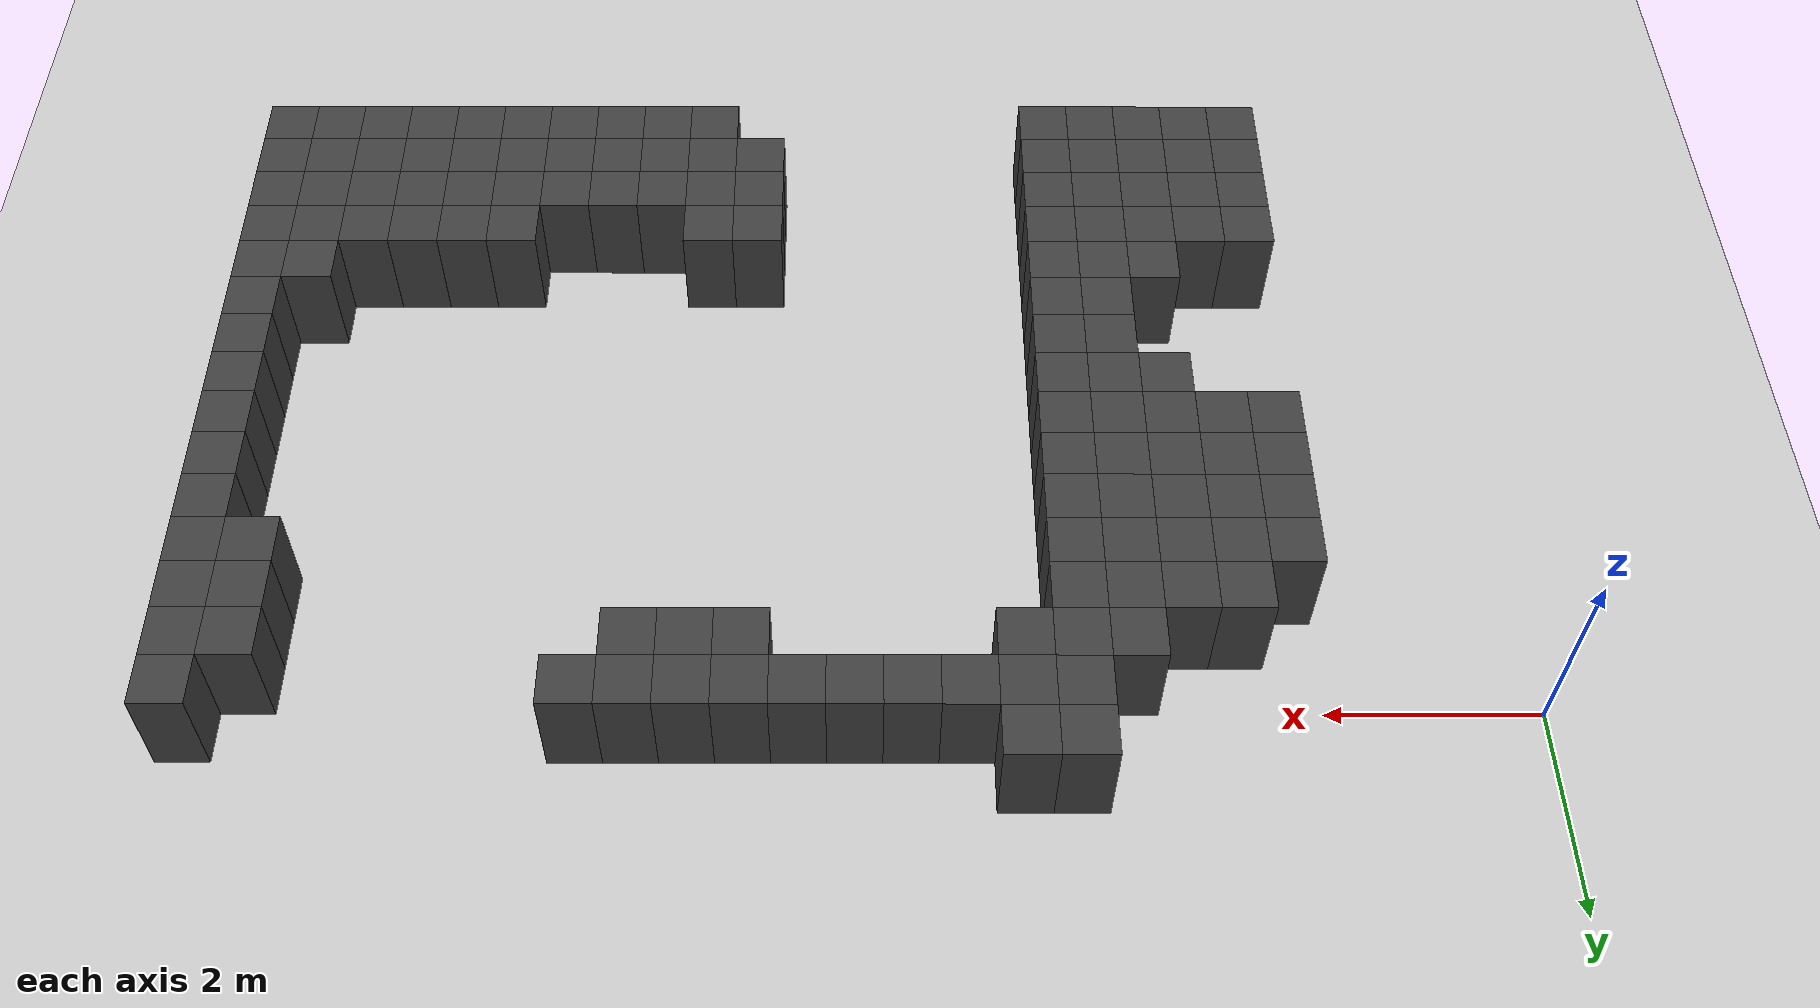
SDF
<sdf version="1.7">
 <world name="map_8843">
  <model name="ground_plane">
   <static>true</static>
   <link name="link">
    <collision name="collision">
     <geometry><plane><normal>0 0 1</normal><size>200 200</size></plane></geometry>
    </collision>
    <visual name="visual">
     <geometry><plane><normal>0 0 1</normal><size>200 200</size></plane></geometry>
     <material><ambient>0.8 0.8 0.8 1</ambient><diffuse>0.8 0.8 0.8 1</diffuse></material>
    </visual>
   </link>
  </model>
  <model name="maze_environment">
   <static>true</static>
   <link name="wall_461">
    <pose>4.250 0.750 0.500 0 0 0</pose>
    <collision name="col"><geometry><box><size>0.5 0.5 1.0</size></box></geometry></collision>
    <visual name="vis">
     <geometry><box><size>0.5 0.5 1.0</size></box></geometry>
     <material><ambient>0.15 0.15 0.15 1</ambient><diffuse>0.25 0.25 0.25 1</diffuse></material>
    </visual>
   </link>
   <link name="wall_462">
    <pose>4.750 0.750 0.500 0 0 0</pose>
    <collision name="col"><geometry><box><size>0.5 0.5 1.0</size></box></geometry></collision>
    <visual name="vis">
     <geometry><box><size>0.5 0.5 1.0</size></box></geometry>
     <material><ambient>0.15 0.15 0.15 1</ambient><diffuse>0.25 0.25 0.25 1</diffuse></material>
    </visual>
   </link>
   <link name="wall_484">
    <pose>4.250 0.250 0.500 0 0 0</pose>
    <collision name="col"><geometry><box><size>0.5 0.5 1.0</size></box></geometry></collision>
    <visual name="vis">
     <geometry><box><size>0.5 0.5 1.0</size></box></geometry>
     <material><ambient>0.15 0.15 0.15 1</ambient><diffuse>0.25 0.25 0.25 1</diffuse></material>
    </visual>
   </link>
   <link name="wall_485">
    <pose>4.750 0.250 0.500 0 0 0</pose>
    <collision name="col"><geometry><box><size>0.5 0.5 1.0</size></box></geometry></collision>
    <visual name="vis">
     <geometry><box><size>0.5 0.5 1.0</size></box></geometry>
     <material><ambient>0.15 0.15 0.15 1</ambient><diffuse>0.25 0.25 0.25 1</diffuse></material>
    </visual>
   </link>
   <link name="wall_486">
    <pose>5.250 0.250 0.500 0 0 0</pose>
    <collision name="col"><geometry><box><size>0.5 0.5 1.0</size></box></geometry></collision>
    <visual name="vis">
     <geometry><box><size>0.5 0.5 1.0</size></box></geometry>
     <material><ambient>0.15 0.15 0.15 1</ambient><diffuse>0.25 0.25 0.25 1</diffuse></material>
    </visual>
   </link>
   <link name="wall_487">
    <pose>5.750 0.250 0.500 0 0 0</pose>
    <collision name="col"><geometry><box><size>0.5 0.5 1.0</size></box></geometry></collision>
    <visual name="vis">
     <geometry><box><size>0.5 0.5 1.0</size></box></geometry>
     <material><ambient>0.15 0.15 0.15 1</ambient><diffuse>0.25 0.25 0.25 1</diffuse></material>
    </visual>
   </link>
   <link name="wall_488">
    <pose>6.250 0.250 0.500 0 0 0</pose>
    <collision name="col"><geometry><box><size>0.5 0.5 1.0</size></box></geometry></collision>
    <visual name="vis">
     <geometry><box><size>0.5 0.5 1.0</size></box></geometry>
     <material><ambient>0.15 0.15 0.15 1</ambient><diffuse>0.25 0.25 0.25 1</diffuse></material>
    </visual>
   </link>
   <link name="wall_489">
    <pose>6.750 0.250 0.500 0 0 0</pose>
    <collision name="col"><geometry><box><size>0.5 0.5 1.0</size></box></geometry></collision>
    <visual name="vis">
     <geometry><box><size>0.5 0.5 1.0</size></box></geometry>
     <material><ambient>0.15 0.15 0.15 1</ambient><diffuse>0.25 0.25 0.25 1</diffuse></material>
    </visual>
   </link>
   <link name="wall_490">
    <pose>7.250 0.250 0.500 0 0 0</pose>
    <collision name="col"><geometry><box><size>0.5 0.5 1.0</size></box></geometry></collision>
    <visual name="vis">
     <geometry><box><size>0.5 0.5 1.0</size></box></geometry>
     <material><ambient>0.15 0.15 0.15 1</ambient><diffuse>0.25 0.25 0.25 1</diffuse></material>
    </visual>
   </link>
   <link name="wall_491">
    <pose>7.750 0.250 0.500 0 0 0</pose>
    <collision name="col"><geometry><box><size>0.5 0.5 1.0</size></box></geometry></collision>
    <visual name="vis">
     <geometry><box><size>0.5 0.5 1.0</size></box></geometry>
     <material><ambient>0.15 0.15 0.15 1</ambient><diffuse>0.25 0.25 0.25 1</diffuse></material>
    </visual>
   </link>
   <link name="wall_492">
    <pose>8.250 0.250 0.500 0 0 0</pose>
    <collision name="col"><geometry><box><size>0.5 0.5 1.0</size></box></geometry></collision>
    <visual name="vis">
     <geometry><box><size>0.5 0.5 1.0</size></box></geometry>
     <material><ambient>0.15 0.15 0.15 1</ambient><diffuse>0.25 0.25 0.25 1</diffuse></material>
    </visual>
   </link>
   <link name="wall_493">
    <pose>8.750 0.250 0.500 0 0 0</pose>
    <collision name="col"><geometry><box><size>0.5 0.5 1.0</size></box></geometry></collision>
    <visual name="vis">
     <geometry><box><size>0.5 0.5 1.0</size></box></geometry>
     <material><ambient>0.15 0.15 0.15 1</ambient><diffuse>0.25 0.25 0.25 1</diffuse></material>
    </visual>
   </link>
   <link name="wall_494">
    <pose>12.250 0.250 0.500 0 0 0</pose>
    <collision name="col"><geometry><box><size>0.5 0.5 1.0</size></box></geometry></collision>
    <visual name="vis">
     <geometry><box><size>0.5 0.5 1.0</size></box></geometry>
     <material><ambient>0.15 0.15 0.15 1</ambient><diffuse>0.25 0.25 0.25 1</diffuse></material>
    </visual>
   </link>
   <link name="wall_508">
    <pose>3.750 -0.250 0.500 0 0 0</pose>
    <collision name="col"><geometry><box><size>0.5 0.5 1.0</size></box></geometry></collision>
    <visual name="vis">
     <geometry><box><size>0.5 0.5 1.0</size></box></geometry>
     <material><ambient>0.15 0.15 0.15 1</ambient><diffuse>0.25 0.25 0.25 1</diffuse></material>
    </visual>
   </link>
   <link name="wall_509">
    <pose>4.250 -0.250 0.500 0 0 0</pose>
    <collision name="col"><geometry><box><size>0.5 0.5 1.0</size></box></geometry></collision>
    <visual name="vis">
     <geometry><box><size>0.5 0.5 1.0</size></box></geometry>
     <material><ambient>0.15 0.15 0.15 1</ambient><diffuse>0.25 0.25 0.25 1</diffuse></material>
    </visual>
   </link>
   <link name="wall_510">
    <pose>4.750 -0.250 0.500 0 0 0</pose>
    <collision name="col"><geometry><box><size>0.5 0.5 1.0</size></box></geometry></collision>
    <visual name="vis">
     <geometry><box><size>0.5 0.5 1.0</size></box></geometry>
     <material><ambient>0.15 0.15 0.15 1</ambient><diffuse>0.25 0.25 0.25 1</diffuse></material>
    </visual>
   </link>
   <link name="wall_511">
    <pose>7.250 -0.250 0.500 0 0 0</pose>
    <collision name="col"><geometry><box><size>0.5 0.5 1.0</size></box></geometry></collision>
    <visual name="vis">
     <geometry><box><size>0.5 0.5 1.0</size></box></geometry>
     <material><ambient>0.15 0.15 0.15 1</ambient><diffuse>0.25 0.25 0.25 1</diffuse></material>
    </visual>
   </link>
   <link name="wall_512">
    <pose>7.750 -0.250 0.500 0 0 0</pose>
    <collision name="col"><geometry><box><size>0.5 0.5 1.0</size></box></geometry></collision>
    <visual name="vis">
     <geometry><box><size>0.5 0.5 1.0</size></box></geometry>
     <material><ambient>0.15 0.15 0.15 1</ambient><diffuse>0.25 0.25 0.25 1</diffuse></material>
    </visual>
   </link>
   <link name="wall_513">
    <pose>8.250 -0.250 0.500 0 0 0</pose>
    <collision name="col"><geometry><box><size>0.5 0.5 1.0</size></box></geometry></collision>
    <visual name="vis">
     <geometry><box><size>0.5 0.5 1.0</size></box></geometry>
     <material><ambient>0.15 0.15 0.15 1</ambient><diffuse>0.25 0.25 0.25 1</diffuse></material>
    </visual>
   </link>
   <link name="wall_514">
    <pose>11.750 -0.250 0.500 0 0 0</pose>
    <collision name="col"><geometry><box><size>0.5 0.5 1.0</size></box></geometry></collision>
    <visual name="vis">
     <geometry><box><size>0.5 0.5 1.0</size></box></geometry>
     <material><ambient>0.15 0.15 0.15 1</ambient><diffuse>0.25 0.25 0.25 1</diffuse></material>
    </visual>
   </link>
   <link name="wall_515">
    <pose>12.250 -0.250 0.500 0 0 0</pose>
    <collision name="col"><geometry><box><size>0.5 0.5 1.0</size></box></geometry></collision>
    <visual name="vis">
     <geometry><box><size>0.5 0.5 1.0</size></box></geometry>
     <material><ambient>0.15 0.15 0.15 1</ambient><diffuse>0.25 0.25 0.25 1</diffuse></material>
    </visual>
   </link>
   <link name="wall_530">
    <pose>2.750 -0.750 0.500 0 0 0</pose>
    <collision name="col"><geometry><box><size>0.5 0.5 1.0</size></box></geometry></collision>
    <visual name="vis">
     <geometry><box><size>0.5 0.5 1.0</size></box></geometry>
     <material><ambient>0.15 0.15 0.15 1</ambient><diffuse>0.25 0.25 0.25 1</diffuse></material>
    </visual>
   </link>
   <link name="wall_531">
    <pose>3.250 -0.750 0.500 0 0 0</pose>
    <collision name="col"><geometry><box><size>0.5 0.5 1.0</size></box></geometry></collision>
    <visual name="vis">
     <geometry><box><size>0.5 0.5 1.0</size></box></geometry>
     <material><ambient>0.15 0.15 0.15 1</ambient><diffuse>0.25 0.25 0.25 1</diffuse></material>
    </visual>
   </link>
   <link name="wall_532">
    <pose>3.750 -0.750 0.500 0 0 0</pose>
    <collision name="col"><geometry><box><size>0.5 0.5 1.0</size></box></geometry></collision>
    <visual name="vis">
     <geometry><box><size>0.5 0.5 1.0</size></box></geometry>
     <material><ambient>0.15 0.15 0.15 1</ambient><diffuse>0.25 0.25 0.25 1</diffuse></material>
    </visual>
   </link>
   <link name="wall_533">
    <pose>4.250 -0.750 0.500 0 0 0</pose>
    <collision name="col"><geometry><box><size>0.5 0.5 1.0</size></box></geometry></collision>
    <visual name="vis">
     <geometry><box><size>0.5 0.5 1.0</size></box></geometry>
     <material><ambient>0.15 0.15 0.15 1</ambient><diffuse>0.25 0.25 0.25 1</diffuse></material>
    </visual>
   </link>
   <link name="wall_534">
    <pose>11.750 -0.750 0.500 0 0 0</pose>
    <collision name="col"><geometry><box><size>0.5 0.5 1.0</size></box></geometry></collision>
    <visual name="vis">
     <geometry><box><size>0.5 0.5 1.0</size></box></geometry>
     <material><ambient>0.15 0.15 0.15 1</ambient><diffuse>0.25 0.25 0.25 1</diffuse></material>
    </visual>
   </link>
   <link name="wall_535">
    <pose>12.250 -0.750 0.500 0 0 0</pose>
    <collision name="col"><geometry><box><size>0.5 0.5 1.0</size></box></geometry></collision>
    <visual name="vis">
     <geometry><box><size>0.5 0.5 1.0</size></box></geometry>
     <material><ambient>0.15 0.15 0.15 1</ambient><diffuse>0.25 0.25 0.25 1</diffuse></material>
    </visual>
   </link>
   <link name="wall_546">
    <pose>2.250 -1.250 0.500 0 0 0</pose>
    <collision name="col"><geometry><box><size>0.5 0.5 1.0</size></box></geometry></collision>
    <visual name="vis">
     <geometry><box><size>0.5 0.5 1.0</size></box></geometry>
     <material><ambient>0.15 0.15 0.15 1</ambient><diffuse>0.25 0.25 0.25 1</diffuse></material>
    </visual>
   </link>
   <link name="wall_547">
    <pose>2.750 -1.250 0.500 0 0 0</pose>
    <collision name="col"><geometry><box><size>0.5 0.5 1.0</size></box></geometry></collision>
    <visual name="vis">
     <geometry><box><size>0.5 0.5 1.0</size></box></geometry>
     <material><ambient>0.15 0.15 0.15 1</ambient><diffuse>0.25 0.25 0.25 1</diffuse></material>
    </visual>
   </link>
   <link name="wall_548">
    <pose>3.250 -1.250 0.500 0 0 0</pose>
    <collision name="col"><geometry><box><size>0.5 0.5 1.0</size></box></geometry></collision>
    <visual name="vis">
     <geometry><box><size>0.5 0.5 1.0</size></box></geometry>
     <material><ambient>0.15 0.15 0.15 1</ambient><diffuse>0.25 0.25 0.25 1</diffuse></material>
    </visual>
   </link>
   <link name="wall_549">
    <pose>3.750 -1.250 0.500 0 0 0</pose>
    <collision name="col"><geometry><box><size>0.5 0.5 1.0</size></box></geometry></collision>
    <visual name="vis">
     <geometry><box><size>0.5 0.5 1.0</size></box></geometry>
     <material><ambient>0.15 0.15 0.15 1</ambient><diffuse>0.25 0.25 0.25 1</diffuse></material>
    </visual>
   </link>
   <link name="wall_550">
    <pose>4.250 -1.250 0.500 0 0 0</pose>
    <collision name="col"><geometry><box><size>0.5 0.5 1.0</size></box></geometry></collision>
    <visual name="vis">
     <geometry><box><size>0.5 0.5 1.0</size></box></geometry>
     <material><ambient>0.15 0.15 0.15 1</ambient><diffuse>0.25 0.25 0.25 1</diffuse></material>
    </visual>
   </link>
   <link name="wall_551">
    <pose>11.750 -1.250 0.500 0 0 0</pose>
    <collision name="col"><geometry><box><size>0.5 0.5 1.0</size></box></geometry></collision>
    <visual name="vis">
     <geometry><box><size>0.5 0.5 1.0</size></box></geometry>
     <material><ambient>0.15 0.15 0.15 1</ambient><diffuse>0.25 0.25 0.25 1</diffuse></material>
    </visual>
   </link>
   <link name="wall_552">
    <pose>12.250 -1.250 0.500 0 0 0</pose>
    <collision name="col"><geometry><box><size>0.5 0.5 1.0</size></box></geometry></collision>
    <visual name="vis">
     <geometry><box><size>0.5 0.5 1.0</size></box></geometry>
     <material><ambient>0.15 0.15 0.15 1</ambient><diffuse>0.25 0.25 0.25 1</diffuse></material>
    </visual>
   </link>
   <link name="wall_559">
    <pose>2.250 -1.750 0.500 0 0 0</pose>
    <collision name="col"><geometry><box><size>0.5 0.5 1.0</size></box></geometry></collision>
    <visual name="vis">
     <geometry><box><size>0.5 0.5 1.0</size></box></geometry>
     <material><ambient>0.15 0.15 0.15 1</ambient><diffuse>0.25 0.25 0.25 1</diffuse></material>
    </visual>
   </link>
   <link name="wall_560">
    <pose>2.750 -1.750 0.500 0 0 0</pose>
    <collision name="col"><geometry><box><size>0.5 0.5 1.0</size></box></geometry></collision>
    <visual name="vis">
     <geometry><box><size>0.5 0.5 1.0</size></box></geometry>
     <material><ambient>0.15 0.15 0.15 1</ambient><diffuse>0.25 0.25 0.25 1</diffuse></material>
    </visual>
   </link>
   <link name="wall_561">
    <pose>3.250 -1.750 0.500 0 0 0</pose>
    <collision name="col"><geometry><box><size>0.5 0.5 1.0</size></box></geometry></collision>
    <visual name="vis">
     <geometry><box><size>0.5 0.5 1.0</size></box></geometry>
     <material><ambient>0.15 0.15 0.15 1</ambient><diffuse>0.25 0.25 0.25 1</diffuse></material>
    </visual>
   </link>
   <link name="wall_562">
    <pose>3.750 -1.750 0.500 0 0 0</pose>
    <collision name="col"><geometry><box><size>0.5 0.5 1.0</size></box></geometry></collision>
    <visual name="vis">
     <geometry><box><size>0.5 0.5 1.0</size></box></geometry>
     <material><ambient>0.15 0.15 0.15 1</ambient><diffuse>0.25 0.25 0.25 1</diffuse></material>
    </visual>
   </link>
   <link name="wall_563">
    <pose>4.250 -1.750 0.500 0 0 0</pose>
    <collision name="col"><geometry><box><size>0.5 0.5 1.0</size></box></geometry></collision>
    <visual name="vis">
     <geometry><box><size>0.5 0.5 1.0</size></box></geometry>
     <material><ambient>0.15 0.15 0.15 1</ambient><diffuse>0.25 0.25 0.25 1</diffuse></material>
    </visual>
   </link>
   <link name="wall_564">
    <pose>12.250 -1.750 0.500 0 0 0</pose>
    <collision name="col"><geometry><box><size>0.5 0.5 1.0</size></box></geometry></collision>
    <visual name="vis">
     <geometry><box><size>0.5 0.5 1.0</size></box></geometry>
     <material><ambient>0.15 0.15 0.15 1</ambient><diffuse>0.25 0.25 0.25 1</diffuse></material>
    </visual>
   </link>
   <link name="wall_572">
    <pose>2.250 -2.250 0.500 0 0 0</pose>
    <collision name="col"><geometry><box><size>0.5 0.5 1.0</size></box></geometry></collision>
    <visual name="vis">
     <geometry><box><size>0.5 0.5 1.0</size></box></geometry>
     <material><ambient>0.15 0.15 0.15 1</ambient><diffuse>0.25 0.25 0.25 1</diffuse></material>
    </visual>
   </link>
   <link name="wall_573">
    <pose>2.750 -2.250 0.500 0 0 0</pose>
    <collision name="col"><geometry><box><size>0.5 0.5 1.0</size></box></geometry></collision>
    <visual name="vis">
     <geometry><box><size>0.5 0.5 1.0</size></box></geometry>
     <material><ambient>0.15 0.15 0.15 1</ambient><diffuse>0.25 0.25 0.25 1</diffuse></material>
    </visual>
   </link>
   <link name="wall_574">
    <pose>3.250 -2.250 0.500 0 0 0</pose>
    <collision name="col"><geometry><box><size>0.5 0.5 1.0</size></box></geometry></collision>
    <visual name="vis">
     <geometry><box><size>0.5 0.5 1.0</size></box></geometry>
     <material><ambient>0.15 0.15 0.15 1</ambient><diffuse>0.25 0.25 0.25 1</diffuse></material>
    </visual>
   </link>
   <link name="wall_575">
    <pose>3.750 -2.250 0.500 0 0 0</pose>
    <collision name="col"><geometry><box><size>0.5 0.5 1.0</size></box></geometry></collision>
    <visual name="vis">
     <geometry><box><size>0.5 0.5 1.0</size></box></geometry>
     <material><ambient>0.15 0.15 0.15 1</ambient><diffuse>0.25 0.25 0.25 1</diffuse></material>
    </visual>
   </link>
   <link name="wall_576">
    <pose>4.250 -2.250 0.500 0 0 0</pose>
    <collision name="col"><geometry><box><size>0.5 0.5 1.0</size></box></geometry></collision>
    <visual name="vis">
     <geometry><box><size>0.5 0.5 1.0</size></box></geometry>
     <material><ambient>0.15 0.15 0.15 1</ambient><diffuse>0.25 0.25 0.25 1</diffuse></material>
    </visual>
   </link>
   <link name="wall_577">
    <pose>12.250 -2.250 0.500 0 0 0</pose>
    <collision name="col"><geometry><box><size>0.5 0.5 1.0</size></box></geometry></collision>
    <visual name="vis">
     <geometry><box><size>0.5 0.5 1.0</size></box></geometry>
     <material><ambient>0.15 0.15 0.15 1</ambient><diffuse>0.25 0.25 0.25 1</diffuse></material>
    </visual>
   </link>
   <link name="wall_585">
    <pose>2.250 -2.750 0.500 0 0 0</pose>
    <collision name="col"><geometry><box><size>0.5 0.5 1.0</size></box></geometry></collision>
    <visual name="vis">
     <geometry><box><size>0.5 0.5 1.0</size></box></geometry>
     <material><ambient>0.15 0.15 0.15 1</ambient><diffuse>0.25 0.25 0.25 1</diffuse></material>
    </visual>
   </link>
   <link name="wall_586">
    <pose>2.750 -2.750 0.500 0 0 0</pose>
    <collision name="col"><geometry><box><size>0.5 0.5 1.0</size></box></geometry></collision>
    <visual name="vis">
     <geometry><box><size>0.5 0.5 1.0</size></box></geometry>
     <material><ambient>0.15 0.15 0.15 1</ambient><diffuse>0.25 0.25 0.25 1</diffuse></material>
    </visual>
   </link>
   <link name="wall_587">
    <pose>3.250 -2.750 0.500 0 0 0</pose>
    <collision name="col"><geometry><box><size>0.5 0.5 1.0</size></box></geometry></collision>
    <visual name="vis">
     <geometry><box><size>0.5 0.5 1.0</size></box></geometry>
     <material><ambient>0.15 0.15 0.15 1</ambient><diffuse>0.25 0.25 0.25 1</diffuse></material>
    </visual>
   </link>
   <link name="wall_588">
    <pose>3.750 -2.750 0.500 0 0 0</pose>
    <collision name="col"><geometry><box><size>0.5 0.5 1.0</size></box></geometry></collision>
    <visual name="vis">
     <geometry><box><size>0.5 0.5 1.0</size></box></geometry>
     <material><ambient>0.15 0.15 0.15 1</ambient><diffuse>0.25 0.25 0.25 1</diffuse></material>
    </visual>
   </link>
   <link name="wall_589">
    <pose>4.250 -2.750 0.500 0 0 0</pose>
    <collision name="col"><geometry><box><size>0.5 0.5 1.0</size></box></geometry></collision>
    <visual name="vis">
     <geometry><box><size>0.5 0.5 1.0</size></box></geometry>
     <material><ambient>0.15 0.15 0.15 1</ambient><diffuse>0.25 0.25 0.25 1</diffuse></material>
    </visual>
   </link>
   <link name="wall_590">
    <pose>12.250 -2.750 0.500 0 0 0</pose>
    <collision name="col"><geometry><box><size>0.5 0.5 1.0</size></box></geometry></collision>
    <visual name="vis">
     <geometry><box><size>0.5 0.5 1.0</size></box></geometry>
     <material><ambient>0.15 0.15 0.15 1</ambient><diffuse>0.25 0.25 0.25 1</diffuse></material>
    </visual>
   </link>
   <link name="wall_601">
    <pose>3.250 -3.250 0.500 0 0 0</pose>
    <collision name="col"><geometry><box><size>0.5 0.5 1.0</size></box></geometry></collision>
    <visual name="vis">
     <geometry><box><size>0.5 0.5 1.0</size></box></geometry>
     <material><ambient>0.15 0.15 0.15 1</ambient><diffuse>0.25 0.25 0.25 1</diffuse></material>
    </visual>
   </link>
   <link name="wall_602">
    <pose>3.750 -3.250 0.500 0 0 0</pose>
    <collision name="col"><geometry><box><size>0.5 0.5 1.0</size></box></geometry></collision>
    <visual name="vis">
     <geometry><box><size>0.5 0.5 1.0</size></box></geometry>
     <material><ambient>0.15 0.15 0.15 1</ambient><diffuse>0.25 0.25 0.25 1</diffuse></material>
    </visual>
   </link>
   <link name="wall_603">
    <pose>4.250 -3.250 0.500 0 0 0</pose>
    <collision name="col"><geometry><box><size>0.5 0.5 1.0</size></box></geometry></collision>
    <visual name="vis">
     <geometry><box><size>0.5 0.5 1.0</size></box></geometry>
     <material><ambient>0.15 0.15 0.15 1</ambient><diffuse>0.25 0.25 0.25 1</diffuse></material>
    </visual>
   </link>
   <link name="wall_604">
    <pose>12.250 -3.250 0.500 0 0 0</pose>
    <collision name="col"><geometry><box><size>0.5 0.5 1.0</size></box></geometry></collision>
    <visual name="vis">
     <geometry><box><size>0.5 0.5 1.0</size></box></geometry>
     <material><ambient>0.15 0.15 0.15 1</ambient><diffuse>0.25 0.25 0.25 1</diffuse></material>
    </visual>
   </link>
   <link name="wall_622">
    <pose>3.750 -3.750 0.500 0 0 0</pose>
    <collision name="col"><geometry><box><size>0.5 0.5 1.0</size></box></geometry></collision>
    <visual name="vis">
     <geometry><box><size>0.5 0.5 1.0</size></box></geometry>
     <material><ambient>0.15 0.15 0.15 1</ambient><diffuse>0.25 0.25 0.25 1</diffuse></material>
    </visual>
   </link>
   <link name="wall_623">
    <pose>4.250 -3.750 0.500 0 0 0</pose>
    <collision name="col"><geometry><box><size>0.5 0.5 1.0</size></box></geometry></collision>
    <visual name="vis">
     <geometry><box><size>0.5 0.5 1.0</size></box></geometry>
     <material><ambient>0.15 0.15 0.15 1</ambient><diffuse>0.25 0.25 0.25 1</diffuse></material>
    </visual>
   </link>
   <link name="wall_624">
    <pose>12.250 -3.750 0.500 0 0 0</pose>
    <collision name="col"><geometry><box><size>0.5 0.5 1.0</size></box></geometry></collision>
    <visual name="vis">
     <geometry><box><size>0.5 0.5 1.0</size></box></geometry>
     <material><ambient>0.15 0.15 0.15 1</ambient><diffuse>0.25 0.25 0.25 1</diffuse></material>
    </visual>
   </link>
   <link name="wall_641">
    <pose>3.750 -4.250 0.500 0 0 0</pose>
    <collision name="col"><geometry><box><size>0.5 0.5 1.0</size></box></geometry></collision>
    <visual name="vis">
     <geometry><box><size>0.5 0.5 1.0</size></box></geometry>
     <material><ambient>0.15 0.15 0.15 1</ambient><diffuse>0.25 0.25 0.25 1</diffuse></material>
    </visual>
   </link>
   <link name="wall_642">
    <pose>4.250 -4.250 0.500 0 0 0</pose>
    <collision name="col"><geometry><box><size>0.5 0.5 1.0</size></box></geometry></collision>
    <visual name="vis">
     <geometry><box><size>0.5 0.5 1.0</size></box></geometry>
     <material><ambient>0.15 0.15 0.15 1</ambient><diffuse>0.25 0.25 0.25 1</diffuse></material>
    </visual>
   </link>
   <link name="wall_643">
    <pose>12.250 -4.250 0.500 0 0 0</pose>
    <collision name="col"><geometry><box><size>0.5 0.5 1.0</size></box></geometry></collision>
    <visual name="vis">
     <geometry><box><size>0.5 0.5 1.0</size></box></geometry>
     <material><ambient>0.15 0.15 0.15 1</ambient><diffuse>0.25 0.25 0.25 1</diffuse></material>
    </visual>
   </link>
   <link name="wall_658">
    <pose>3.250 -4.750 0.500 0 0 0</pose>
    <collision name="col"><geometry><box><size>0.5 0.5 1.0</size></box></geometry></collision>
    <visual name="vis">
     <geometry><box><size>0.5 0.5 1.0</size></box></geometry>
     <material><ambient>0.15 0.15 0.15 1</ambient><diffuse>0.25 0.25 0.25 1</diffuse></material>
    </visual>
   </link>
   <link name="wall_659">
    <pose>3.750 -4.750 0.500 0 0 0</pose>
    <collision name="col"><geometry><box><size>0.5 0.5 1.0</size></box></geometry></collision>
    <visual name="vis">
     <geometry><box><size>0.5 0.5 1.0</size></box></geometry>
     <material><ambient>0.15 0.15 0.15 1</ambient><diffuse>0.25 0.25 0.25 1</diffuse></material>
    </visual>
   </link>
   <link name="wall_660">
    <pose>4.250 -4.750 0.500 0 0 0</pose>
    <collision name="col"><geometry><box><size>0.5 0.5 1.0</size></box></geometry></collision>
    <visual name="vis">
     <geometry><box><size>0.5 0.5 1.0</size></box></geometry>
     <material><ambient>0.15 0.15 0.15 1</ambient><diffuse>0.25 0.25 0.25 1</diffuse></material>
    </visual>
   </link>
   <link name="wall_661">
    <pose>11.750 -4.750 0.500 0 0 0</pose>
    <collision name="col"><geometry><box><size>0.5 0.5 1.0</size></box></geometry></collision>
    <visual name="vis">
     <geometry><box><size>0.5 0.5 1.0</size></box></geometry>
     <material><ambient>0.15 0.15 0.15 1</ambient><diffuse>0.25 0.25 0.25 1</diffuse></material>
    </visual>
   </link>
   <link name="wall_662">
    <pose>12.250 -4.750 0.500 0 0 0</pose>
    <collision name="col"><geometry><box><size>0.5 0.5 1.0</size></box></geometry></collision>
    <visual name="vis">
     <geometry><box><size>0.5 0.5 1.0</size></box></geometry>
     <material><ambient>0.15 0.15 0.15 1</ambient><diffuse>0.25 0.25 0.25 1</diffuse></material>
    </visual>
   </link>
   <link name="wall_672">
    <pose>2.250 -5.250 0.500 0 0 0</pose>
    <collision name="col"><geometry><box><size>0.5 0.5 1.0</size></box></geometry></collision>
    <visual name="vis">
     <geometry><box><size>0.5 0.5 1.0</size></box></geometry>
     <material><ambient>0.15 0.15 0.15 1</ambient><diffuse>0.25 0.25 0.25 1</diffuse></material>
    </visual>
   </link>
   <link name="wall_673">
    <pose>2.750 -5.250 0.500 0 0 0</pose>
    <collision name="col"><geometry><box><size>0.5 0.5 1.0</size></box></geometry></collision>
    <visual name="vis">
     <geometry><box><size>0.5 0.5 1.0</size></box></geometry>
     <material><ambient>0.15 0.15 0.15 1</ambient><diffuse>0.25 0.25 0.25 1</diffuse></material>
    </visual>
   </link>
   <link name="wall_674">
    <pose>3.250 -5.250 0.500 0 0 0</pose>
    <collision name="col"><geometry><box><size>0.5 0.5 1.0</size></box></geometry></collision>
    <visual name="vis">
     <geometry><box><size>0.5 0.5 1.0</size></box></geometry>
     <material><ambient>0.15 0.15 0.15 1</ambient><diffuse>0.25 0.25 0.25 1</diffuse></material>
    </visual>
   </link>
   <link name="wall_675">
    <pose>3.750 -5.250 0.500 0 0 0</pose>
    <collision name="col"><geometry><box><size>0.5 0.5 1.0</size></box></geometry></collision>
    <visual name="vis">
     <geometry><box><size>0.5 0.5 1.0</size></box></geometry>
     <material><ambient>0.15 0.15 0.15 1</ambient><diffuse>0.25 0.25 0.25 1</diffuse></material>
    </visual>
   </link>
   <link name="wall_676">
    <pose>4.250 -5.250 0.500 0 0 0</pose>
    <collision name="col"><geometry><box><size>0.5 0.5 1.0</size></box></geometry></collision>
    <visual name="vis">
     <geometry><box><size>0.5 0.5 1.0</size></box></geometry>
     <material><ambient>0.15 0.15 0.15 1</ambient><diffuse>0.25 0.25 0.25 1</diffuse></material>
    </visual>
   </link>
   <link name="wall_677">
    <pose>7.250 -5.250 0.500 0 0 0</pose>
    <collision name="col"><geometry><box><size>0.5 0.5 1.0</size></box></geometry></collision>
    <visual name="vis">
     <geometry><box><size>0.5 0.5 1.0</size></box></geometry>
     <material><ambient>0.15 0.15 0.15 1</ambient><diffuse>0.25 0.25 0.25 1</diffuse></material>
    </visual>
   </link>
   <link name="wall_678">
    <pose>7.750 -5.250 0.500 0 0 0</pose>
    <collision name="col"><geometry><box><size>0.5 0.5 1.0</size></box></geometry></collision>
    <visual name="vis">
     <geometry><box><size>0.5 0.5 1.0</size></box></geometry>
     <material><ambient>0.15 0.15 0.15 1</ambient><diffuse>0.25 0.25 0.25 1</diffuse></material>
    </visual>
   </link>
   <link name="wall_679">
    <pose>9.750 -5.250 0.500 0 0 0</pose>
    <collision name="col"><geometry><box><size>0.5 0.5 1.0</size></box></geometry></collision>
    <visual name="vis">
     <geometry><box><size>0.5 0.5 1.0</size></box></geometry>
     <material><ambient>0.15 0.15 0.15 1</ambient><diffuse>0.25 0.25 0.25 1</diffuse></material>
    </visual>
   </link>
   <link name="wall_680">
    <pose>10.250 -5.250 0.500 0 0 0</pose>
    <collision name="col"><geometry><box><size>0.5 0.5 1.0</size></box></geometry></collision>
    <visual name="vis">
     <geometry><box><size>0.5 0.5 1.0</size></box></geometry>
     <material><ambient>0.15 0.15 0.15 1</ambient><diffuse>0.25 0.25 0.25 1</diffuse></material>
    </visual>
   </link>
   <link name="wall_681">
    <pose>10.750 -5.250 0.500 0 0 0</pose>
    <collision name="col"><geometry><box><size>0.5 0.5 1.0</size></box></geometry></collision>
    <visual name="vis">
     <geometry><box><size>0.5 0.5 1.0</size></box></geometry>
     <material><ambient>0.15 0.15 0.15 1</ambient><diffuse>0.25 0.25 0.25 1</diffuse></material>
    </visual>
   </link>
   <link name="wall_682">
    <pose>11.250 -5.250 0.500 0 0 0</pose>
    <collision name="col"><geometry><box><size>0.5 0.5 1.0</size></box></geometry></collision>
    <visual name="vis">
     <geometry><box><size>0.5 0.5 1.0</size></box></geometry>
     <material><ambient>0.15 0.15 0.15 1</ambient><diffuse>0.25 0.25 0.25 1</diffuse></material>
    </visual>
   </link>
   <link name="wall_683">
    <pose>11.750 -5.250 0.500 0 0 0</pose>
    <collision name="col"><geometry><box><size>0.5 0.5 1.0</size></box></geometry></collision>
    <visual name="vis">
     <geometry><box><size>0.5 0.5 1.0</size></box></geometry>
     <material><ambient>0.15 0.15 0.15 1</ambient><diffuse>0.25 0.25 0.25 1</diffuse></material>
    </visual>
   </link>
   <link name="wall_684">
    <pose>12.250 -5.250 0.500 0 0 0</pose>
    <collision name="col"><geometry><box><size>0.5 0.5 1.0</size></box></geometry></collision>
    <visual name="vis">
     <geometry><box><size>0.5 0.5 1.0</size></box></geometry>
     <material><ambient>0.15 0.15 0.15 1</ambient><diffuse>0.25 0.25 0.25 1</diffuse></material>
    </visual>
   </link>
   <link name="wall_692">
    <pose>2.250 -5.750 0.500 0 0 0</pose>
    <collision name="col"><geometry><box><size>0.5 0.5 1.0</size></box></geometry></collision>
    <visual name="vis">
     <geometry><box><size>0.5 0.5 1.0</size></box></geometry>
     <material><ambient>0.15 0.15 0.15 1</ambient><diffuse>0.25 0.25 0.25 1</diffuse></material>
    </visual>
   </link>
   <link name="wall_693">
    <pose>2.750 -5.750 0.500 0 0 0</pose>
    <collision name="col"><geometry><box><size>0.5 0.5 1.0</size></box></geometry></collision>
    <visual name="vis">
     <geometry><box><size>0.5 0.5 1.0</size></box></geometry>
     <material><ambient>0.15 0.15 0.15 1</ambient><diffuse>0.25 0.25 0.25 1</diffuse></material>
    </visual>
   </link>
   <link name="wall_694">
    <pose>3.250 -5.750 0.500 0 0 0</pose>
    <collision name="col"><geometry><box><size>0.5 0.5 1.0</size></box></geometry></collision>
    <visual name="vis">
     <geometry><box><size>0.5 0.5 1.0</size></box></geometry>
     <material><ambient>0.15 0.15 0.15 1</ambient><diffuse>0.25 0.25 0.25 1</diffuse></material>
    </visual>
   </link>
   <link name="wall_695">
    <pose>3.750 -5.750 0.500 0 0 0</pose>
    <collision name="col"><geometry><box><size>0.5 0.5 1.0</size></box></geometry></collision>
    <visual name="vis">
     <geometry><box><size>0.5 0.5 1.0</size></box></geometry>
     <material><ambient>0.15 0.15 0.15 1</ambient><diffuse>0.25 0.25 0.25 1</diffuse></material>
    </visual>
   </link>
   <link name="wall_696">
    <pose>4.250 -5.750 0.500 0 0 0</pose>
    <collision name="col"><geometry><box><size>0.5 0.5 1.0</size></box></geometry></collision>
    <visual name="vis">
     <geometry><box><size>0.5 0.5 1.0</size></box></geometry>
     <material><ambient>0.15 0.15 0.15 1</ambient><diffuse>0.25 0.25 0.25 1</diffuse></material>
    </visual>
   </link>
   <link name="wall_697">
    <pose>7.250 -5.750 0.500 0 0 0</pose>
    <collision name="col"><geometry><box><size>0.5 0.5 1.0</size></box></geometry></collision>
    <visual name="vis">
     <geometry><box><size>0.5 0.5 1.0</size></box></geometry>
     <material><ambient>0.15 0.15 0.15 1</ambient><diffuse>0.25 0.25 0.25 1</diffuse></material>
    </visual>
   </link>
   <link name="wall_698">
    <pose>7.750 -5.750 0.500 0 0 0</pose>
    <collision name="col"><geometry><box><size>0.5 0.5 1.0</size></box></geometry></collision>
    <visual name="vis">
     <geometry><box><size>0.5 0.5 1.0</size></box></geometry>
     <material><ambient>0.15 0.15 0.15 1</ambient><diffuse>0.25 0.25 0.25 1</diffuse></material>
    </visual>
   </link>
   <link name="wall_699">
    <pose>8.250 -5.750 0.500 0 0 0</pose>
    <collision name="col"><geometry><box><size>0.5 0.5 1.0</size></box></geometry></collision>
    <visual name="vis">
     <geometry><box><size>0.5 0.5 1.0</size></box></geometry>
     <material><ambient>0.15 0.15 0.15 1</ambient><diffuse>0.25 0.25 0.25 1</diffuse></material>
    </visual>
   </link>
   <link name="wall_700">
    <pose>8.750 -5.750 0.500 0 0 0</pose>
    <collision name="col"><geometry><box><size>0.5 0.5 1.0</size></box></geometry></collision>
    <visual name="vis">
     <geometry><box><size>0.5 0.5 1.0</size></box></geometry>
     <material><ambient>0.15 0.15 0.15 1</ambient><diffuse>0.25 0.25 0.25 1</diffuse></material>
    </visual>
   </link>
   <link name="wall_701">
    <pose>9.250 -5.750 0.500 0 0 0</pose>
    <collision name="col"><geometry><box><size>0.5 0.5 1.0</size></box></geometry></collision>
    <visual name="vis">
     <geometry><box><size>0.5 0.5 1.0</size></box></geometry>
     <material><ambient>0.15 0.15 0.15 1</ambient><diffuse>0.25 0.25 0.25 1</diffuse></material>
    </visual>
   </link>
   <link name="wall_702">
    <pose>9.750 -5.750 0.500 0 0 0</pose>
    <collision name="col"><geometry><box><size>0.5 0.5 1.0</size></box></geometry></collision>
    <visual name="vis">
     <geometry><box><size>0.5 0.5 1.0</size></box></geometry>
     <material><ambient>0.15 0.15 0.15 1</ambient><diffuse>0.25 0.25 0.25 1</diffuse></material>
    </visual>
   </link>
   <link name="wall_703">
    <pose>10.250 -5.750 0.500 0 0 0</pose>
    <collision name="col"><geometry><box><size>0.5 0.5 1.0</size></box></geometry></collision>
    <visual name="vis">
     <geometry><box><size>0.5 0.5 1.0</size></box></geometry>
     <material><ambient>0.15 0.15 0.15 1</ambient><diffuse>0.25 0.25 0.25 1</diffuse></material>
    </visual>
   </link>
   <link name="wall_704">
    <pose>10.750 -5.750 0.500 0 0 0</pose>
    <collision name="col"><geometry><box><size>0.5 0.5 1.0</size></box></geometry></collision>
    <visual name="vis">
     <geometry><box><size>0.5 0.5 1.0</size></box></geometry>
     <material><ambient>0.15 0.15 0.15 1</ambient><diffuse>0.25 0.25 0.25 1</diffuse></material>
    </visual>
   </link>
   <link name="wall_705">
    <pose>11.250 -5.750 0.500 0 0 0</pose>
    <collision name="col"><geometry><box><size>0.5 0.5 1.0</size></box></geometry></collision>
    <visual name="vis">
     <geometry><box><size>0.5 0.5 1.0</size></box></geometry>
     <material><ambient>0.15 0.15 0.15 1</ambient><diffuse>0.25 0.25 0.25 1</diffuse></material>
    </visual>
   </link>
   <link name="wall_706">
    <pose>11.750 -5.750 0.500 0 0 0</pose>
    <collision name="col"><geometry><box><size>0.5 0.5 1.0</size></box></geometry></collision>
    <visual name="vis">
     <geometry><box><size>0.5 0.5 1.0</size></box></geometry>
     <material><ambient>0.15 0.15 0.15 1</ambient><diffuse>0.25 0.25 0.25 1</diffuse></material>
    </visual>
   </link>
   <link name="wall_707">
    <pose>12.250 -5.750 0.500 0 0 0</pose>
    <collision name="col"><geometry><box><size>0.5 0.5 1.0</size></box></geometry></collision>
    <visual name="vis">
     <geometry><box><size>0.5 0.5 1.0</size></box></geometry>
     <material><ambient>0.15 0.15 0.15 1</ambient><diffuse>0.25 0.25 0.25 1</diffuse></material>
    </visual>
   </link>
   <link name="wall_716">
    <pose>2.250 -6.250 0.500 0 0 0</pose>
    <collision name="col"><geometry><box><size>0.5 0.5 1.0</size></box></geometry></collision>
    <visual name="vis">
     <geometry><box><size>0.5 0.5 1.0</size></box></geometry>
     <material><ambient>0.15 0.15 0.15 1</ambient><diffuse>0.25 0.25 0.25 1</diffuse></material>
    </visual>
   </link>
   <link name="wall_717">
    <pose>2.750 -6.250 0.500 0 0 0</pose>
    <collision name="col"><geometry><box><size>0.5 0.5 1.0</size></box></geometry></collision>
    <visual name="vis">
     <geometry><box><size>0.5 0.5 1.0</size></box></geometry>
     <material><ambient>0.15 0.15 0.15 1</ambient><diffuse>0.25 0.25 0.25 1</diffuse></material>
    </visual>
   </link>
   <link name="wall_718">
    <pose>3.250 -6.250 0.500 0 0 0</pose>
    <collision name="col"><geometry><box><size>0.5 0.5 1.0</size></box></geometry></collision>
    <visual name="vis">
     <geometry><box><size>0.5 0.5 1.0</size></box></geometry>
     <material><ambient>0.15 0.15 0.15 1</ambient><diffuse>0.25 0.25 0.25 1</diffuse></material>
    </visual>
   </link>
   <link name="wall_719">
    <pose>3.750 -6.250 0.500 0 0 0</pose>
    <collision name="col"><geometry><box><size>0.5 0.5 1.0</size></box></geometry></collision>
    <visual name="vis">
     <geometry><box><size>0.5 0.5 1.0</size></box></geometry>
     <material><ambient>0.15 0.15 0.15 1</ambient><diffuse>0.25 0.25 0.25 1</diffuse></material>
    </visual>
   </link>
   <link name="wall_720">
    <pose>4.250 -6.250 0.500 0 0 0</pose>
    <collision name="col"><geometry><box><size>0.5 0.5 1.0</size></box></geometry></collision>
    <visual name="vis">
     <geometry><box><size>0.5 0.5 1.0</size></box></geometry>
     <material><ambient>0.15 0.15 0.15 1</ambient><diffuse>0.25 0.25 0.25 1</diffuse></material>
    </visual>
   </link>
   <link name="wall_721">
    <pose>7.250 -6.250 0.500 0 0 0</pose>
    <collision name="col"><geometry><box><size>0.5 0.5 1.0</size></box></geometry></collision>
    <visual name="vis">
     <geometry><box><size>0.5 0.5 1.0</size></box></geometry>
     <material><ambient>0.15 0.15 0.15 1</ambient><diffuse>0.25 0.25 0.25 1</diffuse></material>
    </visual>
   </link>
   <link name="wall_722">
    <pose>7.750 -6.250 0.500 0 0 0</pose>
    <collision name="col"><geometry><box><size>0.5 0.5 1.0</size></box></geometry></collision>
    <visual name="vis">
     <geometry><box><size>0.5 0.5 1.0</size></box></geometry>
     <material><ambient>0.15 0.15 0.15 1</ambient><diffuse>0.25 0.25 0.25 1</diffuse></material>
    </visual>
   </link>
   <link name="wall_723">
    <pose>8.250 -6.250 0.500 0 0 0</pose>
    <collision name="col"><geometry><box><size>0.5 0.5 1.0</size></box></geometry></collision>
    <visual name="vis">
     <geometry><box><size>0.5 0.5 1.0</size></box></geometry>
     <material><ambient>0.15 0.15 0.15 1</ambient><diffuse>0.25 0.25 0.25 1</diffuse></material>
    </visual>
   </link>
   <link name="wall_724">
    <pose>8.750 -6.250 0.500 0 0 0</pose>
    <collision name="col"><geometry><box><size>0.5 0.5 1.0</size></box></geometry></collision>
    <visual name="vis">
     <geometry><box><size>0.5 0.5 1.0</size></box></geometry>
     <material><ambient>0.15 0.15 0.15 1</ambient><diffuse>0.25 0.25 0.25 1</diffuse></material>
    </visual>
   </link>
   <link name="wall_725">
    <pose>9.250 -6.250 0.500 0 0 0</pose>
    <collision name="col"><geometry><box><size>0.5 0.5 1.0</size></box></geometry></collision>
    <visual name="vis">
     <geometry><box><size>0.5 0.5 1.0</size></box></geometry>
     <material><ambient>0.15 0.15 0.15 1</ambient><diffuse>0.25 0.25 0.25 1</diffuse></material>
    </visual>
   </link>
   <link name="wall_726">
    <pose>9.750 -6.250 0.500 0 0 0</pose>
    <collision name="col"><geometry><box><size>0.5 0.5 1.0</size></box></geometry></collision>
    <visual name="vis">
     <geometry><box><size>0.5 0.5 1.0</size></box></geometry>
     <material><ambient>0.15 0.15 0.15 1</ambient><diffuse>0.25 0.25 0.25 1</diffuse></material>
    </visual>
   </link>
   <link name="wall_727">
    <pose>10.250 -6.250 0.500 0 0 0</pose>
    <collision name="col"><geometry><box><size>0.5 0.5 1.0</size></box></geometry></collision>
    <visual name="vis">
     <geometry><box><size>0.5 0.5 1.0</size></box></geometry>
     <material><ambient>0.15 0.15 0.15 1</ambient><diffuse>0.25 0.25 0.25 1</diffuse></material>
    </visual>
   </link>
   <link name="wall_728">
    <pose>10.750 -6.250 0.500 0 0 0</pose>
    <collision name="col"><geometry><box><size>0.5 0.5 1.0</size></box></geometry></collision>
    <visual name="vis">
     <geometry><box><size>0.5 0.5 1.0</size></box></geometry>
     <material><ambient>0.15 0.15 0.15 1</ambient><diffuse>0.25 0.25 0.25 1</diffuse></material>
    </visual>
   </link>
   <link name="wall_729">
    <pose>11.250 -6.250 0.500 0 0 0</pose>
    <collision name="col"><geometry><box><size>0.5 0.5 1.0</size></box></geometry></collision>
    <visual name="vis">
     <geometry><box><size>0.5 0.5 1.0</size></box></geometry>
     <material><ambient>0.15 0.15 0.15 1</ambient><diffuse>0.25 0.25 0.25 1</diffuse></material>
    </visual>
   </link>
   <link name="wall_730">
    <pose>11.750 -6.250 0.500 0 0 0</pose>
    <collision name="col"><geometry><box><size>0.5 0.5 1.0</size></box></geometry></collision>
    <visual name="vis">
     <geometry><box><size>0.5 0.5 1.0</size></box></geometry>
     <material><ambient>0.15 0.15 0.15 1</ambient><diffuse>0.25 0.25 0.25 1</diffuse></material>
    </visual>
   </link>
   <link name="wall_731">
    <pose>12.250 -6.250 0.500 0 0 0</pose>
    <collision name="col"><geometry><box><size>0.5 0.5 1.0</size></box></geometry></collision>
    <visual name="vis">
     <geometry><box><size>0.5 0.5 1.0</size></box></geometry>
     <material><ambient>0.15 0.15 0.15 1</ambient><diffuse>0.25 0.25 0.25 1</diffuse></material>
    </visual>
   </link>
   <link name="wall_739">
    <pose>2.250 -6.750 0.500 0 0 0</pose>
    <collision name="col"><geometry><box><size>0.5 0.5 1.0</size></box></geometry></collision>
    <visual name="vis">
     <geometry><box><size>0.5 0.5 1.0</size></box></geometry>
     <material><ambient>0.15 0.15 0.15 1</ambient><diffuse>0.25 0.25 0.25 1</diffuse></material>
    </visual>
   </link>
   <link name="wall_740">
    <pose>2.750 -6.750 0.500 0 0 0</pose>
    <collision name="col"><geometry><box><size>0.5 0.5 1.0</size></box></geometry></collision>
    <visual name="vis">
     <geometry><box><size>0.5 0.5 1.0</size></box></geometry>
     <material><ambient>0.15 0.15 0.15 1</ambient><diffuse>0.25 0.25 0.25 1</diffuse></material>
    </visual>
   </link>
   <link name="wall_741">
    <pose>3.250 -6.750 0.500 0 0 0</pose>
    <collision name="col"><geometry><box><size>0.5 0.5 1.0</size></box></geometry></collision>
    <visual name="vis">
     <geometry><box><size>0.5 0.5 1.0</size></box></geometry>
     <material><ambient>0.15 0.15 0.15 1</ambient><diffuse>0.25 0.25 0.25 1</diffuse></material>
    </visual>
   </link>
   <link name="wall_742">
    <pose>3.750 -6.750 0.500 0 0 0</pose>
    <collision name="col"><geometry><box><size>0.5 0.5 1.0</size></box></geometry></collision>
    <visual name="vis">
     <geometry><box><size>0.5 0.5 1.0</size></box></geometry>
     <material><ambient>0.15 0.15 0.15 1</ambient><diffuse>0.25 0.25 0.25 1</diffuse></material>
    </visual>
   </link>
   <link name="wall_743">
    <pose>4.250 -6.750 0.500 0 0 0</pose>
    <collision name="col"><geometry><box><size>0.5 0.5 1.0</size></box></geometry></collision>
    <visual name="vis">
     <geometry><box><size>0.5 0.5 1.0</size></box></geometry>
     <material><ambient>0.15 0.15 0.15 1</ambient><diffuse>0.25 0.25 0.25 1</diffuse></material>
    </visual>
   </link>
   <link name="wall_744">
    <pose>7.750 -6.750 0.500 0 0 0</pose>
    <collision name="col"><geometry><box><size>0.5 0.5 1.0</size></box></geometry></collision>
    <visual name="vis">
     <geometry><box><size>0.5 0.5 1.0</size></box></geometry>
     <material><ambient>0.15 0.15 0.15 1</ambient><diffuse>0.25 0.25 0.25 1</diffuse></material>
    </visual>
   </link>
   <link name="wall_745">
    <pose>8.250 -6.750 0.500 0 0 0</pose>
    <collision name="col"><geometry><box><size>0.5 0.5 1.0</size></box></geometry></collision>
    <visual name="vis">
     <geometry><box><size>0.5 0.5 1.0</size></box></geometry>
     <material><ambient>0.15 0.15 0.15 1</ambient><diffuse>0.25 0.25 0.25 1</diffuse></material>
    </visual>
   </link>
   <link name="wall_746">
    <pose>8.750 -6.750 0.500 0 0 0</pose>
    <collision name="col"><geometry><box><size>0.5 0.5 1.0</size></box></geometry></collision>
    <visual name="vis">
     <geometry><box><size>0.5 0.5 1.0</size></box></geometry>
     <material><ambient>0.15 0.15 0.15 1</ambient><diffuse>0.25 0.25 0.25 1</diffuse></material>
    </visual>
   </link>
   <link name="wall_747">
    <pose>9.250 -6.750 0.500 0 0 0</pose>
    <collision name="col"><geometry><box><size>0.5 0.5 1.0</size></box></geometry></collision>
    <visual name="vis">
     <geometry><box><size>0.5 0.5 1.0</size></box></geometry>
     <material><ambient>0.15 0.15 0.15 1</ambient><diffuse>0.25 0.25 0.25 1</diffuse></material>
    </visual>
   </link>
   <link name="wall_748">
    <pose>9.750 -6.750 0.500 0 0 0</pose>
    <collision name="col"><geometry><box><size>0.5 0.5 1.0</size></box></geometry></collision>
    <visual name="vis">
     <geometry><box><size>0.5 0.5 1.0</size></box></geometry>
     <material><ambient>0.15 0.15 0.15 1</ambient><diffuse>0.25 0.25 0.25 1</diffuse></material>
    </visual>
   </link>
   <link name="wall_749">
    <pose>10.250 -6.750 0.500 0 0 0</pose>
    <collision name="col"><geometry><box><size>0.5 0.5 1.0</size></box></geometry></collision>
    <visual name="vis">
     <geometry><box><size>0.5 0.5 1.0</size></box></geometry>
     <material><ambient>0.15 0.15 0.15 1</ambient><diffuse>0.25 0.25 0.25 1</diffuse></material>
    </visual>
   </link>
   <link name="wall_750">
    <pose>10.750 -6.750 0.500 0 0 0</pose>
    <collision name="col"><geometry><box><size>0.5 0.5 1.0</size></box></geometry></collision>
    <visual name="vis">
     <geometry><box><size>0.5 0.5 1.0</size></box></geometry>
     <material><ambient>0.15 0.15 0.15 1</ambient><diffuse>0.25 0.25 0.25 1</diffuse></material>
    </visual>
   </link>
   <link name="wall_751">
    <pose>11.250 -6.750 0.500 0 0 0</pose>
    <collision name="col"><geometry><box><size>0.5 0.5 1.0</size></box></geometry></collision>
    <visual name="vis">
     <geometry><box><size>0.5 0.5 1.0</size></box></geometry>
     <material><ambient>0.15 0.15 0.15 1</ambient><diffuse>0.25 0.25 0.25 1</diffuse></material>
    </visual>
   </link>
   <link name="wall_752">
    <pose>11.750 -6.750 0.500 0 0 0</pose>
    <collision name="col"><geometry><box><size>0.5 0.5 1.0</size></box></geometry></collision>
    <visual name="vis">
     <geometry><box><size>0.5 0.5 1.0</size></box></geometry>
     <material><ambient>0.15 0.15 0.15 1</ambient><diffuse>0.25 0.25 0.25 1</diffuse></material>
    </visual>
   </link>
   <link name="wall_753">
    <pose>12.250 -6.750 0.500 0 0 0</pose>
    <collision name="col"><geometry><box><size>0.5 0.5 1.0</size></box></geometry></collision>
    <visual name="vis">
     <geometry><box><size>0.5 0.5 1.0</size></box></geometry>
     <material><ambient>0.15 0.15 0.15 1</ambient><diffuse>0.25 0.25 0.25 1</diffuse></material>
    </visual>
   </link>
  </model>
 </world>
</sdf>
